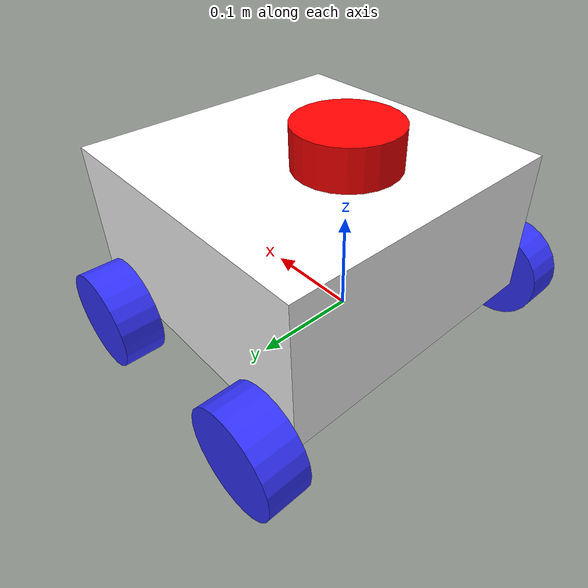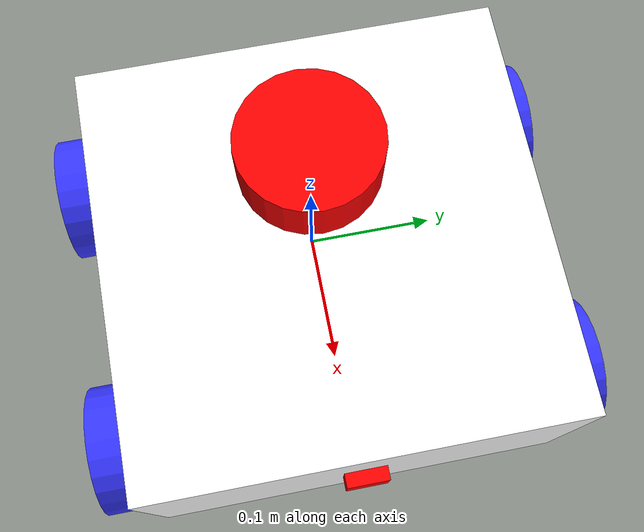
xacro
<?xml version="1.0"?>
<robot xmlns:xacro="http://www.ros.org/wiki/xacro"  name="robot">

    <xacro:arg name="use_ros2_control" default="true"/>
    <xacro:arg name="sim_mode" default="false"/>

    <xacro:include filename="robot_core.xacro" />

    <xacro:if value="$(arg use_ros2_control)">
        <xacro:include filename="ros2_control.xacro" />
    </xacro:if>
    <xacro:unless value="$(arg use_ros2_control)">
        <xacro:include filename="gazebo_control.xacro" />
    </xacro:unless>
    <xacro:include filename="lidar.xacro" />
    <xacro:include filename="camera.xacro" />

</robot>

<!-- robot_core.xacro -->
<robot xmlns:xacro="http://www.ros.org/wiki/xacro" >

    <xacro:include filename="inertial_macros.xacro"/>

    <material name="white">
        <color rgba="1 1 1 1" />
    </material>

    <material name="orange">
        <color rgba="1 0.3 0.1 1" />
    </material>

    <material name="blue">
        <color rgba="0.2 0.2 1 1" />
    </material>

    <material name="black">
        <color rgba="0 0 0 1" />
    </material>

    <material name="red">
        <color rgba="1 0 0 1" />
    </material>

    <!-- BASE LINK -->

    <link name="base_link">

    </link>

    <!-- BASE FOOTPRINT LINK -->

    <joint name="base_footprint_joint" type="fixed">
        <parent link="base_link"/>
        <child link="base_footprint"/>
        <origin xyz="0 0 0" rpy="0 0 0"/>
    </joint>

    <link name="base_footprint">
    </link>

    <!-- CHASSIS LINK -->

    <joint name="chassis_joint" type="fixed">
        <parent link="base_link"/>
        <child link="chassis"/>
        <origin xyz="-0.1 0 0"/>
    </joint>

    <link name="chassis">
        <visual>
            <origin xyz="0.15 0 0.075"/>
            <geometry>
                <box size="0.3 0.3 0.15"/>
            </geometry>
            <material name="white"/>
        </visual>
        <collision>
            <origin xyz="0.15 0 0.075"/>
            <geometry>
                <box size="0.3 0.3 0.15"/>
            </geometry>
        </collision>
        <xacro:inertial_box mass="0.5" x="0.3" y="0.3" z="0.15">
            <origin xyz="0.15 0 0.075" rpy="0 0 0"/>
        </xacro:inertial_box>
    </link>

    <gazebo reference="chassis">
        <material>Gazebo/White</material>
    </gazebo>

    <!-- BACK LEFT WHEEL LINK -->

    <joint name="left_rear_wheel_joint" type="continuous">
        <parent link="base_link"/>
        <child link="left_rear_wheel"/>
        <origin xyz="-0.075 0.175 0" rpy="-${pi/2} 0 0"/>
        <axis xyz="0 0 1"/>
    </joint>

    <link name="left_rear_wheel">
        <visual>
            <geometry>
                <cylinder radius="0.05" length="0.04"/>
            </geometry>
            <material name="blue"/>
        </visual>
        <collision>
            <geometry>
                <cylinder radius="0.05" length="0.04"/>
            </geometry>
        </collision>
        <xacro:inertial_cylinder mass="0.1" length="0.04" radius="0.05">
            <origin xyz="0 0 0" rpy="0 0 0"/>
        </xacro:inertial_cylinder>
    </link>

    <gazebo reference="left_rear_wheel">
        <material>Gazebo/Blue</material>
    </gazebo>

    <!-- BACK RIGHT WHEEL LINK -->

    <joint name="right_rear_wheel_joint" type="continuous">
        <parent link="base_link"/>
        <child link="right_rear_wheel"/>
        <origin xyz="-0.075 -0.175 0" rpy="${pi/2} 0 0"/>
        <axis xyz="0 0 -1"/>
    </joint>

    <link name="right_rear_wheel">
        <visual>
            <geometry>
                <cylinder radius="0.05" length="0.04"/>
            </geometry>
            <material name="blue"/>
        </visual>
        <collision>
            <geometry>
                <cylinder radius="0.05" length="0.04"/>
            </geometry>
        </collision>
        <xacro:inertial_cylinder mass="0.1" length="0.04" radius="0.05">
            <origin xyz="0 0 0" rpy="0 0 0"/>
        </xacro:inertial_cylinder>
    </link>

    <gazebo reference="right_rear_wheel">
        <material>Gazebo/Blue</material>
    </gazebo>

     <!-- FRONT LEFT WHEEL LINK -->

    <joint name="left_front_wheel_joint" type="continuous">
        <parent link="base_link"/>
        <child link="left_front_wheel"/>
        <origin xyz="0.140 0.175 0" rpy="-${pi/2} 0 0"/>
        <axis xyz="0 0 1"/>
    </joint>

    <link name="left_front_wheel">
        <visual>
            <geometry>
                <cylinder radius="0.05" length="0.04"/>
            </geometry>
            <material name="blue"/>
        </visual>
        <collision>
            <geometry>
                <cylinder radius="0.05" length="0.04"/>
            </geometry>
        </collision>
        <xacro:inertial_cylinder mass="0.1" length="0.04" radius="0.05">
            <origin xyz="0 0 0" rpy="0 0 0"/>
        </xacro:inertial_cylinder>
    </link>

    <gazebo reference="left_front_wheel">
        <material>Gazebo/Blue</material>
    </gazebo>

    <!-- FRONT RIGHT WHEEL LINK -->

    <joint name="right_front_wheel_joint" type="continuous">
        <parent link="base_link"/>
        <child link="right_front_wheel"/>
        <origin xyz="0.140 -0.175 0" rpy="${pi/2} 0 0"/>
        <axis xyz="0 0 -1"/>
    </joint>

    <link name="right_front_wheel">
        <visual>
            <geometry>
                <cylinder radius="0.05" length="0.04"/>
            </geometry>
            <material name="blue"/>
        </visual>
        <collision>
            <geometry>
                <cylinder radius="0.05" length="0.04"/>
            </geometry>
        </collision>
        <xacro:inertial_cylinder mass="0.1" length="0.04" radius="0.05">
            <origin xyz="0 0 0" rpy="0 0 0"/>
        </xacro:inertial_cylinder>
    </link>

    <gazebo reference="right_front_wheel">
        <material>Gazebo/Blue</material>
    </gazebo>

</robot>

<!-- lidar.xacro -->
<robot xmlns:xacro="http://www.ros.org/wiki/xacro">

    <joint name="laser_joint" type="fixed">
        <parent link="chassis"/>
        <child link="laser_frame"/>
        <origin xyz="0.1 0 0.175" rpy="0 0 0"/>
    </joint>

    <link name="laser_frame">
        <visual>
            <geometry>
                <cylinder radius="0.05" length="0.04"/>
            </geometry>
            <material name="red"/>
        </visual>
        <collision>
            <geometry>
                <cylinder radius="0.05" length="0.04"/>
            </geometry>
        </collision>
        <xacro:inertial_cylinder mass="0.1" length="0.04" radius="0.05">
            <origin xyz="0 0 0" rpy="0 0 0"/>
        </xacro:inertial_cylinder>
    </link>

    <gazebo reference="laser_frame">
        <material>Gazebo/Red</material>

        <sensor name="laser" type="gpu_lidar">
            <pose> 0 0 0 0 0 0 </pose>
            <visualize>false</visualize>
            <update_rate>10</update_rate>
            <lidar>
                <scan>
                    <horizontal>
                        <samples>360</samples>
                        <min_angle>-3.14</min_angle>
                        <max_angle>3.14</max_angle>
                    </horizontal>
                </scan>
                <range>
                    <min>0.3</min>
                    <max>12</max>
                </range>
            </lidar>

            <topic>scan</topic>

            <gz_frame_id>laser_frame</gz_frame_id>

        </sensor>
    </gazebo>

</robot>

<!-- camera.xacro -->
<robot xmlns:xacro="http://www.ros.org/wiki/xacro">

    <joint name="camera_joint" type="fixed">
        <parent link="chassis"/>
        <child link="camera_link"/>
        <origin xyz="0.305 0 0.08" rpy="0 0 0"/>
    </joint>

    <link name="camera_link">
        <visual>
            <geometry>
                <box size="0.010 0.03 0.03"/>
            </geometry>
            <material name="red"/>
        </visual>
    </link>

    <joint name="camera_optical_joint" type="fixed">
        <parent link="camera_link"/>
        <child link="camera_link_optical"/>
        <origin xyz="0 0 0" rpy="${-pi/2} 0 ${-pi/2}"/>
    </joint>

    <link name="camera_link_optical"></link>

    <gazebo reference="camera_link">
        <material>Gazebo/Red</material>

        <sensor name="camera" type="camera">
            <pose> 0 0 0 0 0 0 </pose>
            <visualize>true</visualize>
            <update_rate>10</update_rate>
            <camera>
                <horizontal_fov>1.089</horizontal_fov>
                <image>
                    <format>R8G8B8</format>
                    <width>640</width>
                    <height>480</height>
                </image>
                <clip>
                    <near>0.05</near>
                    <far>8.0</far>
                </clip>
            </camera>
            <plugin name="camera_controller" filename="libgazebo_ros_camera.so">
                <frame_name>camera_link_optical</frame_name>
            </plugin>
        </sensor>
    </gazebo>

</robot>
